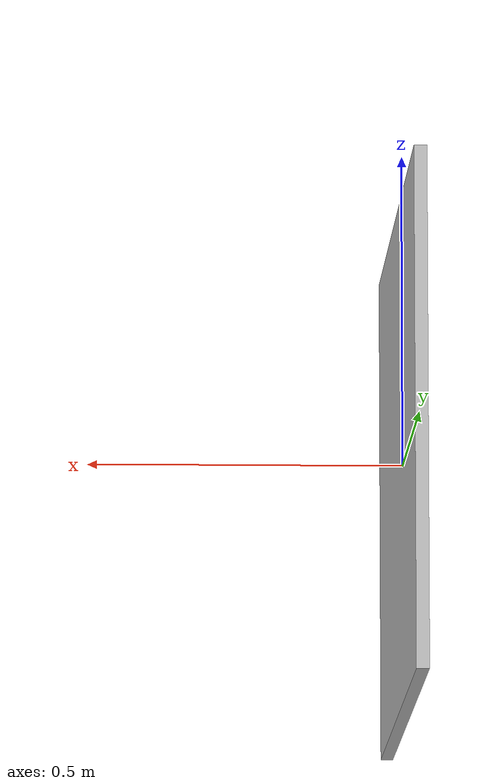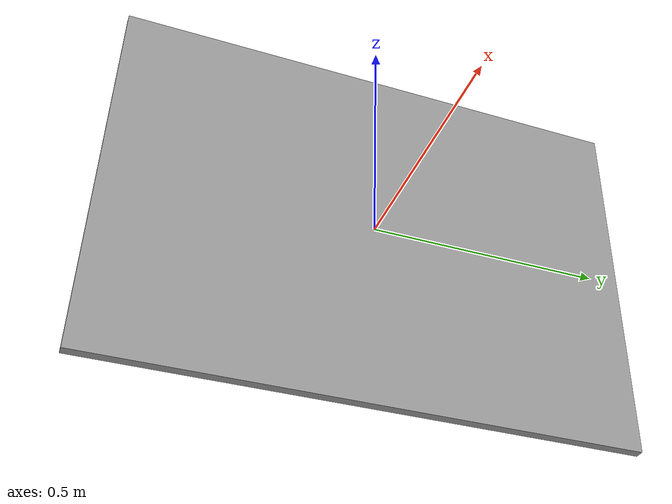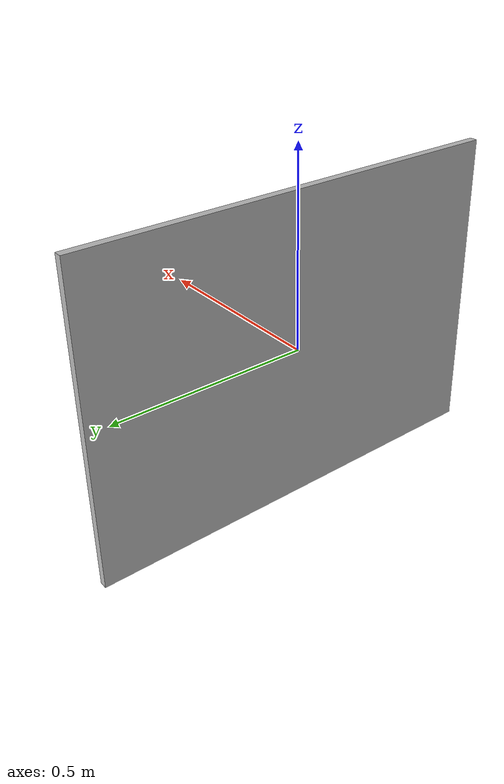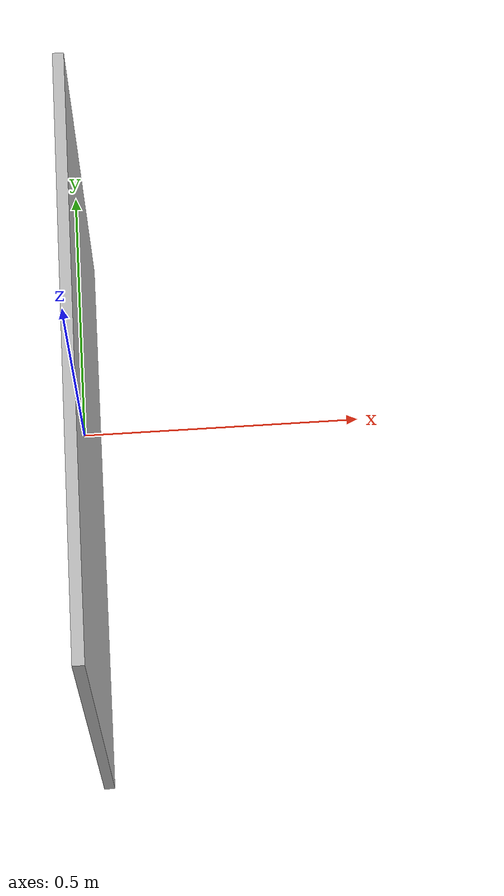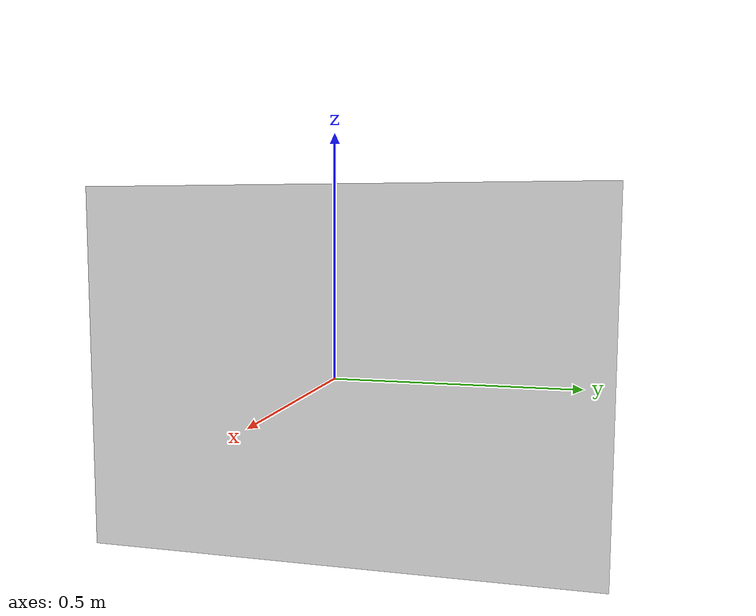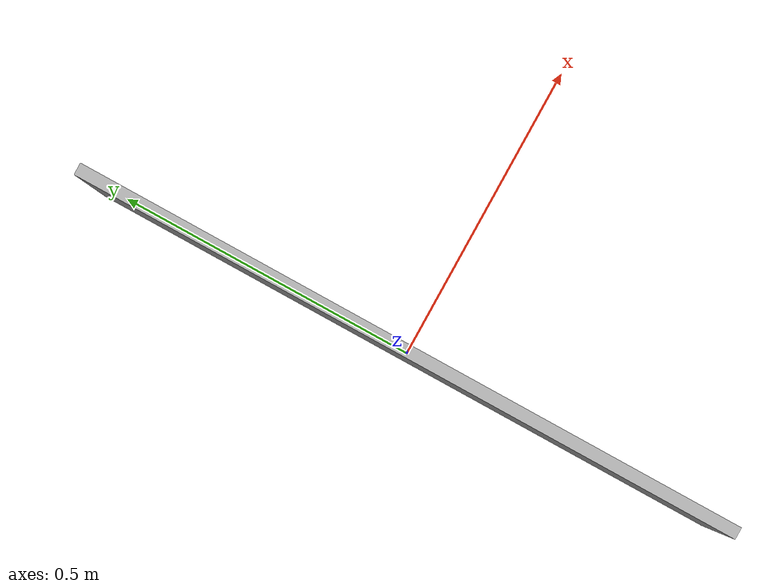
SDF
<?xml version="1.0" ?>
<sdf version="1.4">
  <model name="yolo">
    <static>1</static>
    <link name="link">
      <visual name="visual">
        <pose>0 0 0 0 0 0</pose>
        <geometry>
          <box>
            <size>0.02 1.12 0.8</size>
          </box>
        </geometry>
        <material>
          <script>
      	    <uri>model://yolo/material/scripts</uri>
      	    <uri>model://yolo/material/textures</uri>
            <name>wallWithTrollFace</name>
          </script>
        </material>
      </visual>
      <collision name="collision">
        <geometry>
          <box>
            <size>0.02 1.12 0.8</size>
          </box>
        </geometry>
      </collision>
      <self_collide>0</self_collide>
      <kinematic>0</kinematic>
      <gravity>0</gravity>
    </link>
  </model>
</sdf>
